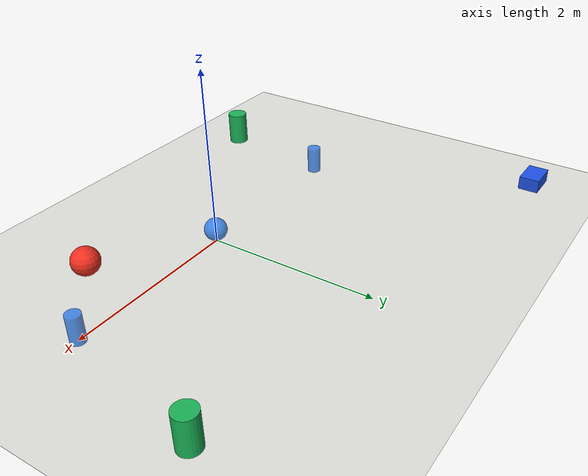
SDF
<?xml version="1.0"?>
<sdf version="1.10">
  <world name="hidden_target_validation">
    <gravity>0 0 -9.81</gravity>

    <!-- Fixed-step physics at real-time rate; the closed-loop node paces its
         packet cadence on the bridged /clock, so the experiment timeline is
         simulation time. -->
    <physics name="fixed_step" type="ignored">
      <max_step_size>0.004</max_step_size>
      <real_time_factor>1.0</real_time_factor>
    </physics>
    <plugin filename="gz-sim-physics-system" name="gz::sim::systems::Physics"/>
    <plugin filename="gz-sim-user-commands-system" name="gz::sim::systems::UserCommands"/>
    <plugin filename="gz-sim-scene-broadcaster-system" name="gz::sim::systems::SceneBroadcaster"/>

    <scene>
      <ambient>0.45 0.45 0.45 1</ambient>
      <background>0.78 0.82 0.86 1</background>
    </scene>

    <light name="sun" type="directional">
      <pose>0 0 8 0 0 0</pose>
      <diffuse>0.9 0.9 0.9 1</diffuse>
      <specular>0.2 0.2 0.2 1</specular>
      <direction>-0.4 0.2 -1</direction>
    </light>

    <model name="ground">
      <static>true</static>
      <link name="ground_link">
        <collision name="collision">
          <geometry>
            <plane>
              <normal>0 0 1</normal>
              <size>10 10</size>
            </plane>
          </geometry>
        </collision>
        <visual name="visual">
          <geometry>
            <plane>
              <normal>0 0 1</normal>
              <size>10 10</size>
            </plane>
          </geometry>
          <material>
            <diffuse>0.88 0.88 0.86 1</diffuse>
          </material>
        </visual>
      </link>
    </model>

    <model name="vehicle">
      <pose>-3.0 2.6 0.15 0 0 0</pose>
      <link name="base_link">
        <gravity>false</gravity>
        <inertial>
          <mass>1.0</mass>
          <inertia>
            <ixx>0.01</ixx>
            <iyy>0.01</iyy>
            <izz>0.01</izz>
          </inertia>
        </inertial>
        <visual name="visual">
          <geometry>
            <box>
              <size>0.36 0.24 0.16</size>
            </box>
          </geometry>
          <material>
            <diffuse>0.12 0.32 0.90 1</diffuse>
          </material>
        </visual>
      </link>
      <plugin filename="gz-sim-velocity-control-system" name="gz::sim::systems::VelocityControl"/>
      <plugin filename="gz-sim-odometry-publisher-system" name="gz::sim::systems::OdometryPublisher">
        <odom_publish_frequency>50</odom_publish_frequency>
      </plugin>
    </model>

    <model name="hidden_target">
      <pose>1.2 -0.75 0.15 0 0 0</pose>
      <static>true</static>
      <link name="target_link">
        <visual name="visual">
          <geometry>
            <sphere>
              <radius>0.16</radius>
            </sphere>
          </geometry>
          <material>
            <diffuse>0.92 0.18 0.12 1</diffuse>
          </material>
        </visual>
      </link>
    </model>

    <model name="target_estimate">
      <pose>0.0 0.0 0.15 0 0 0</pose>
      <static>true</static>
      <link name="estimate_link">
        <visual name="visual">
          <geometry>
            <sphere>
              <radius>0.13</radius>
            </sphere>
          </geometry>
          <material>
            <diffuse>0.08 0.45 0.95 0.75</diffuse>
          </material>
        </visual>
      </link>
    </model>

    <model name="beacon_0">
      <pose>-2.2 -1.4 0.2 0 0 0.75</pose>
      <static>true</static>
      <link name="beacon_link">
        <visual name="visual">
          <geometry>
            <cylinder>
              <radius>0.12</radius>
              <length>0.4</length>
            </cylinder>
          </geometry>
          <material>
            <diffuse>0.10 0.70 0.34 1</diffuse>
          </material>
        </visual>
      </link>
    </model>

    <model name="beacon_1">
      <pose>2.4 1.7 0.2 0 0 -1.15</pose>
      <static>true</static>
      <link name="beacon_link">
        <visual name="visual">
          <geometry>
            <cylinder>
              <radius>0.12</radius>
              <length>0.4</length>
            </cylinder>
          </geometry>
          <material>
            <diffuse>0.10 0.70 0.34 1</diffuse>
          </material>
        </visual>
      </link>
    </model>

    <model name="beacon_estimate_0">
      <pose>2.0 0.0 0.16 0 0 0</pose>
      <static>true</static>
      <link name="estimate_link">
        <visual name="visual">
          <geometry>
            <cylinder>
              <radius>0.08</radius>
              <length>0.32</length>
            </cylinder>
          </geometry>
          <material>
            <diffuse>0.05 0.42 0.95 0.7</diffuse>
          </material>
        </visual>
      </link>
    </model>

    <model name="beacon_estimate_1">
      <pose>-2.0 0.0 0.16 0 0 0</pose>
      <static>true</static>
      <link name="estimate_link">
        <visual name="visual">
          <geometry>
            <cylinder>
              <radius>0.08</radius>
              <length>0.32</length>
            </cylinder>
          </geometry>
          <material>
            <diffuse>0.05 0.42 0.95 0.7</diffuse>
          </material>
        </visual>
      </link>
    </model>
  </world>
</sdf>
